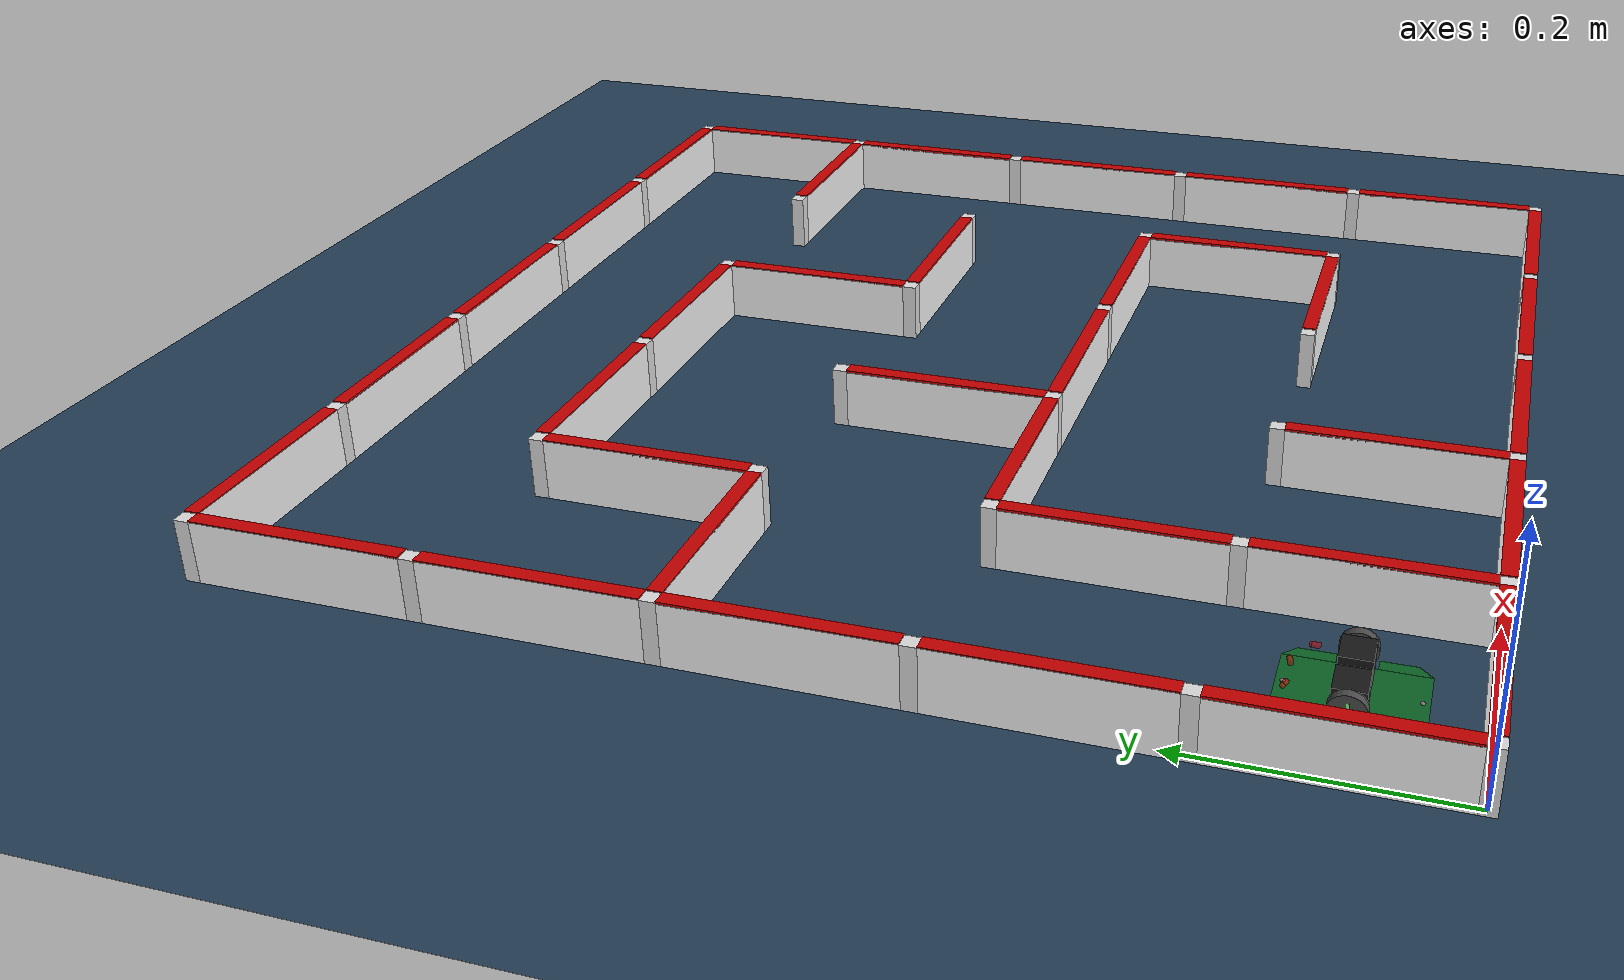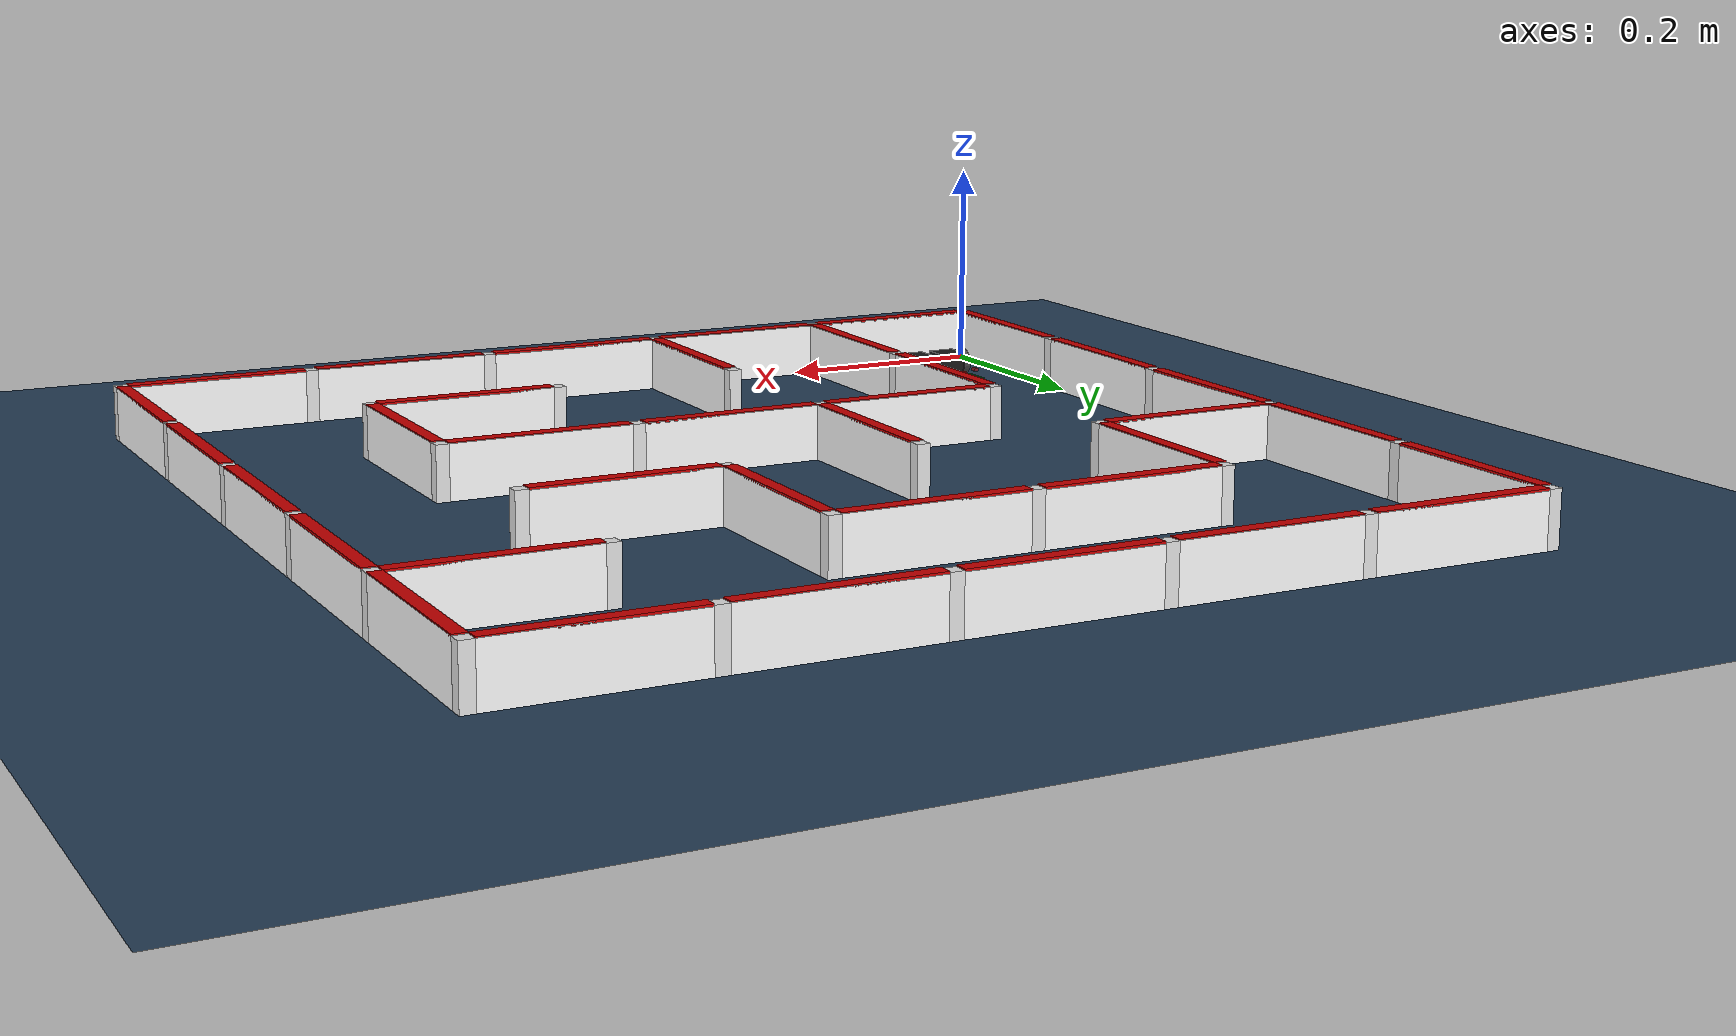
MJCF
<?xml version="1.0" ?>
<mujoco model="micromouse_5x5">
  <compiler angle="degree" coordinate="local" inertiafromgeom="true"/>
  <option timestep="0.001" gravity="0 0 -9.81"/>
  <visual>
    <global offwidth="800" offheight="800"/>
  </visual>
  <asset>
    <texture name="tex_floor" type="2d" builtin="checker" rgb1=".2 .3 .4" rgb2=".1 .2 .3" width="512" height="512"/>
    <material name="mat_floor" texture="tex_floor" reflectance="0.0" texrepeat="50 50"/>
    <material name="mat_wall" rgba="1 1 1 1"/>
    <material name="mat_wall_top" rgba="0.8 0 0 1"/>
    <material name="mat_post" rgba="0.9 0.9 0.9 1"/>
    <material name="mat_pcb" rgba="0.1 0.1 0.1 1" specular="0.5" shininess="0.5"/>
    <material name="mat_tire" rgba="0.1 0.1 0.1 1" reflectance="0.1"/>
    <material name="mat_wheel" rgba="0.9 0.9 0.9 1"/>
    <material name="mat_motor" rgba="0.6 0.6 0.6 1" specular="1" shininess="1"/>
    <material name="mat_battery" rgba="0.1 0.1 0.8 1"/>
    <material name="mat_sensor_body" rgba="0.2 0.2 0.2 1"/>
    <material name="mat_led" rgba="0.9 0.9 0.9 0.5"/>
    <mesh name="coner" vertex="0 0 -0.0008  0.036 0 -0.0008  0.026 0.01 -0.0008  0 0.01 -0.0008  0 0 0.0008  0.036 0 0.0008  0.026 0.01 0.0008  0 0.01 0.0008"/>
  </asset>
  <worldbody>
    <geom name="floor" size="9 9 0.1" type="plane" material="mat_floor"/>
    <light diffuse=".5 .5 .5" pos="0 0 3" dir="0 0 -1"/>
    <geom name="post_0_0" type="box" size="0.006 0.006 0.025" pos="0.0 0.0 0.025" material="mat_post"/>
    <geom name="post_0_1" type="box" size="0.006 0.006 0.025" pos="0.0 0.18 0.025" material="mat_post"/>
    <geom name="post_0_2" type="box" size="0.006 0.006 0.025" pos="0.0 0.36 0.025" material="mat_post"/>
    <geom name="post_0_3" type="box" size="0.006 0.006 0.025" pos="0.0 0.54 0.025" material="mat_post"/>
    <geom name="post_0_4" type="box" size="0.006 0.006 0.025" pos="0.0 0.72 0.025" material="mat_post"/>
    <geom name="post_0_5" type="box" size="0.006 0.006 0.025" pos="0.0 0.8999999999999999 0.025" material="mat_post"/>
    <geom name="post_1_0" type="box" size="0.006 0.006 0.025" pos="0.18 0.0 0.025" material="mat_post"/>
    <geom name="post_1_1" type="box" size="0.006 0.006 0.025" pos="0.18 0.18 0.025" material="mat_post"/>
    <geom name="post_1_2" type="box" size="0.006 0.006 0.025" pos="0.18 0.36 0.025" material="mat_post"/>
    <geom name="post_1_3" type="box" size="0.006 0.006 0.025" pos="0.18 0.54 0.025" material="mat_post"/>
    <geom name="post_1_4" type="box" size="0.006 0.006 0.025" pos="0.18 0.72 0.025" material="mat_post"/>
    <geom name="post_1_5" type="box" size="0.006 0.006 0.025" pos="0.18 0.8999999999999999 0.025" material="mat_post"/>
    <geom name="post_2_0" type="box" size="0.006 0.006 0.025" pos="0.36 0.0 0.025" material="mat_post"/>
    <geom name="post_2_1" type="box" size="0.006 0.006 0.025" pos="0.36 0.18 0.025" material="mat_post"/>
    <geom name="post_2_2" type="box" size="0.006 0.006 0.025" pos="0.36 0.36 0.025" material="mat_post"/>
    <geom name="post_2_3" type="box" size="0.006 0.006 0.025" pos="0.36 0.54 0.025" material="mat_post"/>
    <geom name="post_2_4" type="box" size="0.006 0.006 0.025" pos="0.36 0.72 0.025" material="mat_post"/>
    <geom name="post_2_5" type="box" size="0.006 0.006 0.025" pos="0.36 0.8999999999999999 0.025" material="mat_post"/>
    <geom name="post_3_0" type="box" size="0.006 0.006 0.025" pos="0.54 0.0 0.025" material="mat_post"/>
    <geom name="post_3_1" type="box" size="0.006 0.006 0.025" pos="0.54 0.18 0.025" material="mat_post"/>
    <geom name="post_3_2" type="box" size="0.006 0.006 0.025" pos="0.54 0.36 0.025" material="mat_post"/>
    <geom name="post_3_3" type="box" size="0.006 0.006 0.025" pos="0.54 0.54 0.025" material="mat_post"/>
    <geom name="post_3_4" type="box" size="0.006 0.006 0.025" pos="0.54 0.72 0.025" material="mat_post"/>
    <geom name="post_3_5" type="box" size="0.006 0.006 0.025" pos="0.54 0.8999999999999999 0.025" material="mat_post"/>
    <geom name="post_4_0" type="box" size="0.006 0.006 0.025" pos="0.72 0.0 0.025" material="mat_post"/>
    <geom name="post_4_1" type="box" size="0.006 0.006 0.025" pos="0.72 0.18 0.025" material="mat_post"/>
    <geom name="post_4_2" type="box" size="0.006 0.006 0.025" pos="0.72 0.36 0.025" material="mat_post"/>
    <geom name="post_4_3" type="box" size="0.006 0.006 0.025" pos="0.72 0.54 0.025" material="mat_post"/>
    <geom name="post_4_4" type="box" size="0.006 0.006 0.025" pos="0.72 0.72 0.025" material="mat_post"/>
    <geom name="post_4_5" type="box" size="0.006 0.006 0.025" pos="0.72 0.8999999999999999 0.025" material="mat_post"/>
    <geom name="post_5_0" type="box" size="0.006 0.006 0.025" pos="0.8999999999999999 0.0 0.025" material="mat_post"/>
    <geom name="post_5_1" type="box" size="0.006 0.006 0.025" pos="0.8999999999999999 0.18 0.025" material="mat_post"/>
    <geom name="post_5_2" type="box" size="0.006 0.006 0.025" pos="0.8999999999999999 0.36 0.025" material="mat_post"/>
    <geom name="post_5_3" type="box" size="0.006 0.006 0.025" pos="0.8999999999999999 0.54 0.025" material="mat_post"/>
    <geom name="post_5_4" type="box" size="0.006 0.006 0.025" pos="0.8999999999999999 0.72 0.025" material="mat_post"/>
    <geom name="post_5_5" type="box" size="0.006 0.006 0.025" pos="0.8999999999999999 0.8999999999999999 0.025" material="mat_post"/>
    <geom name="v_wall_0_0" type="box" size="0.006 0.08399999999999999 0.025" pos="0.0 0.09 0.025" material="mat_wall"/>
    <geom name="v_wall_top_0_0" type="box" size="0.006 0.08399999999999999 0.001" pos="0.0 0.09 0.05" material="mat_wall_top"/>
    <geom name="v_wall_0_1" type="box" size="0.006 0.08399999999999999 0.025" pos="0.0 0.27 0.025" material="mat_wall"/>
    <geom name="v_wall_top_0_1" type="box" size="0.006 0.08399999999999999 0.001" pos="0.0 0.27 0.05" material="mat_wall_top"/>
    <geom name="v_wall_0_2" type="box" size="0.006 0.08399999999999999 0.025" pos="0.0 0.44999999999999996 0.025" material="mat_wall"/>
    <geom name="v_wall_top_0_2" type="box" size="0.006 0.08399999999999999 0.001" pos="0.0 0.44999999999999996 0.05" material="mat_wall_top"/>
    <geom name="v_wall_0_3" type="box" size="0.006 0.08399999999999999 0.025" pos="0.0 0.63 0.025" material="mat_wall"/>
    <geom name="v_wall_top_0_3" type="box" size="0.006 0.08399999999999999 0.001" pos="0.0 0.63 0.05" material="mat_wall_top"/>
    <geom name="v_wall_0_4" type="box" size="0.006 0.08399999999999999 0.025" pos="0.0 0.8099999999999999 0.025" material="mat_wall"/>
    <geom name="v_wall_top_0_4" type="box" size="0.006 0.08399999999999999 0.001" pos="0.0 0.8099999999999999 0.05" material="mat_wall_top"/>
    <geom name="v_wall_1_0" type="box" size="0.006 0.08399999999999999 0.025" pos="0.18 0.09 0.025" material="mat_wall"/>
    <geom name="v_wall_top_1_0" type="box" size="0.006 0.08399999999999999 0.001" pos="0.18 0.09 0.05" material="mat_wall_top"/>
    <geom name="v_wall_1_1" type="box" size="0.006 0.08399999999999999 0.025" pos="0.18 0.27 0.025" material="mat_wall"/>
    <geom name="v_wall_top_1_1" type="box" size="0.006 0.08399999999999999 0.001" pos="0.18 0.27 0.05" material="mat_wall_top"/>
    <geom name="v_wall_1_3" type="box" size="0.006 0.08399999999999999 0.025" pos="0.18 0.63 0.025" material="mat_wall"/>
    <geom name="v_wall_top_1_3" type="box" size="0.006 0.08399999999999999 0.001" pos="0.18 0.63 0.05" material="mat_wall_top"/>
    <geom name="v_wall_2_0" type="box" size="0.006 0.08399999999999999 0.025" pos="0.36 0.09 0.025" material="mat_wall"/>
    <geom name="v_wall_top_2_0" type="box" size="0.006 0.08399999999999999 0.001" pos="0.36 0.09 0.05" material="mat_wall_top"/>
    <geom name="v_wall_2_2" type="box" size="0.006 0.08399999999999999 0.025" pos="0.36 0.44999999999999996 0.025" material="mat_wall"/>
    <geom name="v_wall_top_2_2" type="box" size="0.006 0.08399999999999999 0.001" pos="0.36 0.44999999999999996 0.05" material="mat_wall_top"/>
    <geom name="v_wall_3_3" type="box" size="0.006 0.08399999999999999 0.025" pos="0.54 0.63 0.025" material="mat_wall"/>
    <geom name="v_wall_top_3_3" type="box" size="0.006 0.08399999999999999 0.001" pos="0.54 0.63 0.05" material="mat_wall_top"/>
    <geom name="v_wall_4_1" type="box" size="0.006 0.08399999999999999 0.025" pos="0.72 0.27 0.025" material="mat_wall"/>
    <geom name="v_wall_top_4_1" type="box" size="0.006 0.08399999999999999 0.001" pos="0.72 0.27 0.05" material="mat_wall_top"/>
    <geom name="v_wall_5_0" type="box" size="0.006 0.08399999999999999 0.025" pos="0.8999999999999999 0.09 0.025" material="mat_wall"/>
    <geom name="v_wall_top_5_0" type="box" size="0.006 0.08399999999999999 0.001" pos="0.8999999999999999 0.09 0.05" material="mat_wall_top"/>
    <geom name="v_wall_5_1" type="box" size="0.006 0.08399999999999999 0.025" pos="0.8999999999999999 0.27 0.025" material="mat_wall"/>
    <geom name="v_wall_top_5_1" type="box" size="0.006 0.08399999999999999 0.001" pos="0.8999999999999999 0.27 0.05" material="mat_wall_top"/>
    <geom name="v_wall_5_2" type="box" size="0.006 0.08399999999999999 0.025" pos="0.8999999999999999 0.44999999999999996 0.025" material="mat_wall"/>
    <geom name="v_wall_top_5_2" type="box" size="0.006 0.08399999999999999 0.001" pos="0.8999999999999999 0.44999999999999996 0.05" material="mat_wall_top"/>
    <geom name="v_wall_5_3" type="box" size="0.006 0.08399999999999999 0.025" pos="0.8999999999999999 0.63 0.025" material="mat_wall"/>
    <geom name="v_wall_top_5_3" type="box" size="0.006 0.08399999999999999 0.001" pos="0.8999999999999999 0.63 0.05" material="mat_wall_top"/>
    <geom name="v_wall_5_4" type="box" size="0.006 0.08399999999999999 0.025" pos="0.8999999999999999 0.8099999999999999 0.025" material="mat_wall"/>
    <geom name="v_wall_top_5_4" type="box" size="0.006 0.08399999999999999 0.001" pos="0.8999999999999999 0.8099999999999999 0.05" material="mat_wall_top"/>
    <geom name="h_wall_0_0" type="box" size="0.08399999999999999 0.006 0.025" pos="0.09 0.0 0.025" material="mat_wall"/>
    <geom name="h_wall_top_0_0" type="box" size="0.08399999999999999 0.006 0.001" pos="0.09 0.0 0.05" material="mat_wall_top"/>
    <geom name="h_wall_0_3" type="box" size="0.08399999999999999 0.006 0.025" pos="0.09 0.54 0.025" material="mat_wall"/>
    <geom name="h_wall_top_0_3" type="box" size="0.08399999999999999 0.006 0.001" pos="0.09 0.54 0.05" material="mat_wall_top"/>
    <geom name="h_wall_0_5" type="box" size="0.08399999999999999 0.006 0.025" pos="0.09 0.8999999999999999 0.025" material="mat_wall"/>
    <geom name="h_wall_top_0_5" type="box" size="0.08399999999999999 0.006 0.001" pos="0.09 0.8999999999999999 0.05" material="mat_wall_top"/>
    <geom name="h_wall_1_0" type="box" size="0.08399999999999999 0.006 0.025" pos="0.27 0.0 0.025" material="mat_wall"/>
    <geom name="h_wall_top_1_0" type="box" size="0.08399999999999999 0.006 0.001" pos="0.27 0.0 0.05" material="mat_wall_top"/>
    <geom name="h_wall_1_2" type="box" size="0.08399999999999999 0.006 0.025" pos="0.27 0.36 0.025" material="mat_wall"/>
    <geom name="h_wall_top_1_2" type="box" size="0.08399999999999999 0.006 0.001" pos="0.27 0.36 0.05" material="mat_wall_top"/>
    <geom name="h_wall_1_4" type="box" size="0.08399999999999999 0.006 0.025" pos="0.27 0.72 0.025" material="mat_wall"/>
    <geom name="h_wall_top_1_4" type="box" size="0.08399999999999999 0.006 0.001" pos="0.27 0.72 0.05" material="mat_wall_top"/>
    <geom name="h_wall_1_5" type="box" size="0.08399999999999999 0.006 0.025" pos="0.27 0.8999999999999999 0.025" material="mat_wall"/>
    <geom name="h_wall_top_1_5" type="box" size="0.08399999999999999 0.006 0.001" pos="0.27 0.8999999999999999 0.05" material="mat_wall_top"/>
    <geom name="h_wall_2_0" type="box" size="0.08399999999999999 0.006 0.025" pos="0.44999999999999996 0.0 0.025" material="mat_wall"/>
    <geom name="h_wall_top_2_0" type="box" size="0.08399999999999999 0.006 0.001" pos="0.44999999999999996 0.0 0.05" material="mat_wall_top"/>
    <geom name="h_wall_2_2" type="box" size="0.08399999999999999 0.006 0.025" pos="0.44999999999999996 0.36 0.025" material="mat_wall"/>
    <geom name="h_wall_top_2_2" type="box" size="0.08399999999999999 0.006 0.001" pos="0.44999999999999996 0.36 0.05" material="mat_wall_top"/>
    <geom name="h_wall_2_4" type="box" size="0.08399999999999999 0.006 0.025" pos="0.44999999999999996 0.72 0.025" material="mat_wall"/>
    <geom name="h_wall_top_2_4" type="box" size="0.08399999999999999 0.006 0.001" pos="0.44999999999999996 0.72 0.05" material="mat_wall_top"/>
    <geom name="h_wall_2_5" type="box" size="0.08399999999999999 0.006 0.025" pos="0.44999999999999996 0.8999999999999999 0.025" material="mat_wall"/>
    <geom name="h_wall_top_2_5" type="box" size="0.08399999999999999 0.006 0.001" pos="0.44999999999999996 0.8999999999999999 0.05" material="mat_wall_top"/>
    <geom name="h_wall_3_0" type="box" size="0.08399999999999999 0.006 0.025" pos="0.63 0.0 0.025" material="mat_wall"/>
    <geom name="h_wall_top_3_0" type="box" size="0.08399999999999999 0.006 0.001" pos="0.63 0.0 0.05" material="mat_wall_top"/>
    <geom name="h_wall_3_1" type="box" size="0.08399999999999999 0.006 0.025" pos="0.63 0.18 0.025" material="mat_wall"/>
    <geom name="h_wall_top_3_1" type="box" size="0.08399999999999999 0.006 0.001" pos="0.63 0.18 0.05" material="mat_wall_top"/>
    <geom name="h_wall_3_2" type="box" size="0.08399999999999999 0.006 0.025" pos="0.63 0.36 0.025" material="mat_wall"/>
    <geom name="h_wall_top_3_2" type="box" size="0.08399999999999999 0.006 0.001" pos="0.63 0.36 0.05" material="mat_wall_top"/>
    <geom name="h_wall_3_3" type="box" size="0.08399999999999999 0.006 0.025" pos="0.63 0.54 0.025" material="mat_wall"/>
    <geom name="h_wall_top_3_3" type="box" size="0.08399999999999999 0.006 0.001" pos="0.63 0.54 0.05" material="mat_wall_top"/>
    <geom name="h_wall_3_5" type="box" size="0.08399999999999999 0.006 0.025" pos="0.63 0.8999999999999999 0.025" material="mat_wall"/>
    <geom name="h_wall_top_3_5" type="box" size="0.08399999999999999 0.006 0.001" pos="0.63 0.8999999999999999 0.05" material="mat_wall_top"/>
    <geom name="h_wall_4_0" type="box" size="0.08399999999999999 0.006 0.025" pos="0.8099999999999999 0.0 0.025" material="mat_wall"/>
    <geom name="h_wall_top_4_0" type="box" size="0.08399999999999999 0.006 0.001" pos="0.8099999999999999 0.0 0.05" material="mat_wall_top"/>
    <geom name="h_wall_4_4" type="box" size="0.08399999999999999 0.006 0.025" pos="0.8099999999999999 0.72 0.025" material="mat_wall"/>
    <geom name="h_wall_top_4_4" type="box" size="0.08399999999999999 0.006 0.001" pos="0.8099999999999999 0.72 0.05" material="mat_wall_top"/>
    <geom name="h_wall_4_5" type="box" size="0.08399999999999999 0.006 0.025" pos="0.8099999999999999 0.8999999999999999 0.025" material="mat_wall"/>
    <geom name="h_wall_top_4_5" type="box" size="0.08399999999999999 0.006 0.001" pos="0.8099999999999999 0.8999999999999999 0.05" material="mat_wall_top"/>
    <body name="mouse" pos="0.09 0.09 0.002" euler="0 0 90">
      <freejoint name="root"/>
      <camera name="track" mode="trackcom" pos="0 0 0.8" xyaxes="0 -1 0 1 0 0" fovy="45"/>
      <geom name="mein_body1" type="box" size="0.05 0.03 0.0008" rgba="0.05 0.4 0.15 1" pos="0 0 0.002" mass="4.65e-3"/>
      <geom name="mein_body2" type="mesh" mesh="coner" friction="0.0 0.0 0.0" rgba="0.05 0.4 0.15 1" pos="0.014 0.03 0.002" mass="4.65e-3"/>
      <geom name="mein_body3" type="mesh" mesh="coner" friction="0.0 0.0 0.0" rgba="0.05 0.4 0.15 1" pos="0.014 -0.03 0.002" euler="180 0 0" mass="4.65e-3"/>
      <geom name="mein_body4" type="mesh" mesh="coner" friction="0.0 0.0 0.0" rgba="0.05 0.4 0.15 1" pos="-0.014 0.03 0.002" euler="0 180 0" mass="4.65e-3"/>
      <geom name="mein_body5" type="mesh" mesh="coner" friction="0.0 0.0 0.0" rgba="0.05 0.4 0.15 1" pos="-0.014 -0.03 0.002" euler="180 180 0" mass="4.65e-3"/>
      <geom name="caster_front" type="sphere" size="0.002" pos="0.045 0 0.002" rgba="0.5 0.5 0.5 1" friction="0 0 0" mass="0.001"/>
      <geom name="caster_back" type="sphere" size="0.002" pos="-0.045 0 0.002" rgba="0.5 0.5 0.5 1" friction="0 0 0" mass="0.001"/>
      <body name="motorbox1" pos="0 -0.018 0.0135">
        <geom type="box" size="0.0117 0.0135 0.0117" rgba="0.1 0.1 0.1 1" mass="0.05"/>
      </body>
      <body name="motorbox2" pos="0 0.018 0.0135">
        <geom type="box" size="0.0117 0.0135 0.0117" rgba="0.1 0.1 0.1 1" mass="0.05"/>
      </body>
      <body name="left_wheel" pos="0 0.036 0.0135" zaxis="0 1 0">
        <joint name="left_wheel_joint" type="hinge" axis="0 0 1" damping="0.000054"/>
        <geom type="cylinder" size="0.0135 0.0035" rgba="0.3 0.3 0.3 1" friction="1.0 0 0" mass="0.05"/>
        <site type="box" size="0.0012 0.008 0.004" rgba="0.5 1 0.5 1"/>
      </body>
      <body name="right_wheel" pos="0 -0.036 0.0135" zaxis="0 1 0">
        <joint name="right_wheel_joint" type="hinge" axis="0 0 1" damping="0.000054"/>
        <geom type="cylinder" size="0.0135 0.0035" rgba="0.3 0.3 0.3 1" friction="1.0 0 0" mass="0.05"/>
        <site type="box" size="0.0012 0.008 0.004" rgba="0.5 1 0.5 1"/>
      </body>
      <body name="visual_sensor_left_front" pos="0.031 0.036 0.01" zaxis="1 0 0.026">
        <geom type="cylinder" size="0.002 0.003" pos="0 0 -0.003" rgba="1 0 0 0.5" mass="0.001"/>
        <geom type="sphere" size="0.002" pos="0 0 0" rgba="1 0 0 0.5" mass="0.001"/>
        <site name="sensor_left_front" type="box" size="0.001 0.001 0.001" pos="0 0 0.002" rgba="0 0 0 0"/>
      </body>
      <body name="visual_sensor_left_side" pos="0.043 0.016 0.01" zaxis="0.25 1 0.026">
        <geom type="cylinder" size="0.002 0.003" pos="0 0 -0.003" rgba="1 0 0 0.5" mass="0.001"/>
        <geom type="sphere" size="0.002" pos="0 0 0" rgba="1 0 0 0.5" mass="0.001"/>
        <site name="sensor_left_side" type="box" size="0.001 0.001 0.001" pos="0 0 0.002" rgba="0 0 0 0"/>
      </body>
      <body name="visual_sensor_right_front" pos="0.031 -0.036 0.01" zaxis="1 0 0.026">
        <geom type="cylinder" size="0.002 0.003" pos="0 0 -0.003" rgba="1 0 0 0.5" mass="0.001"/>
        <geom type="sphere" size="0.002" pos="0 0 0" rgba="1 0 0 0.5" mass="0.001"/>
        <site name="sensor_right_front" type="box" size="0.001 0.001 0.001" pos="0 0 0.002" rgba="0 0 0 0"/>
      </body>
      <body name="visual_sensor_right_side" pos="0.043 -0.016 0.01" zaxis="0.25 -1 0.026">
        <geom type="cylinder" size="0.002 0.003" pos="0 0 -0.003" rgba="1 0 0 0.5" mass="0.001"/>
        <geom type="sphere" size="0.002" pos="0 0 0" rgba="1 0 0 0.5" mass="0.001"/>
        <site name="sensor_right_side" type="box" size="0.001 0.001 0.001" pos="0 0 0.002" rgba="0 0 0 0"/>
      </body>
      <site name="accerometer" type="box" size="0.001 0.001 0.001" pos="0 0 0.0033"/>
      <site name="gyro" type="box" size="0.001 0.001 0.001" pos="0 0 0.0033"/>
    </body>
  </worldbody>
  <actuator>
    <motor name="act_left" joint="left_wheel_joint" gear="0.0072" ctrllimited="true" ctrlrange="-3 3"/>
    <motor name="act_right" joint="right_wheel_joint" gear="0.0072" ctrllimited="true" ctrlrange="-3 3"/>
  </actuator>
  <sensor>
    <rangefinder name="LF" site="sensor_left_front" cutoff="0.15"/>
    <rangefinder name="LS" site="sensor_left_side" cutoff="0.15"/>
    <rangefinder name="RF" site="sensor_right_front" cutoff="0.15"/>
    <rangefinder name="RS" site="sensor_right_side" cutoff="0.15"/>
    <accelerometer name="Accel" site="accerometer"/>
    <gyro name="Gyro" site="gyro"/>
  </sensor>
  <contact>
    <exclude body1="mouse" body2="left_wheel"/>
    <exclude body1="mouse" body2="right_wheel"/>
  </contact>
</mujoco>
